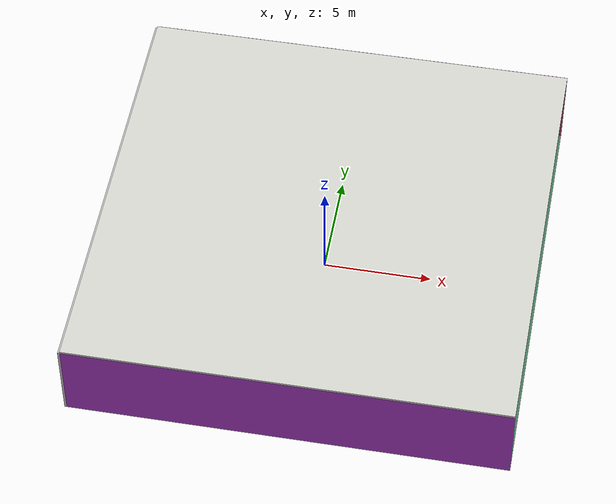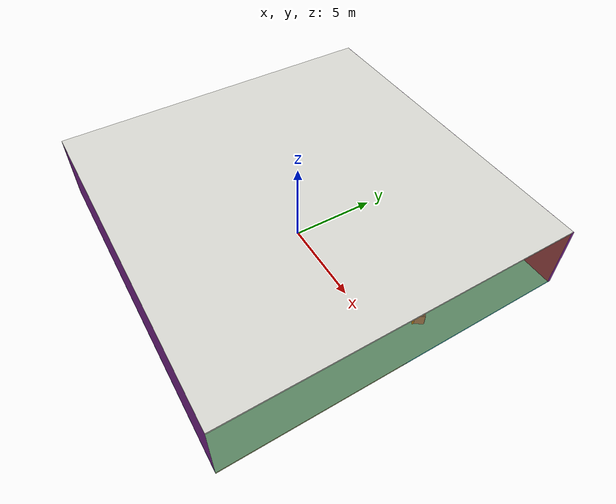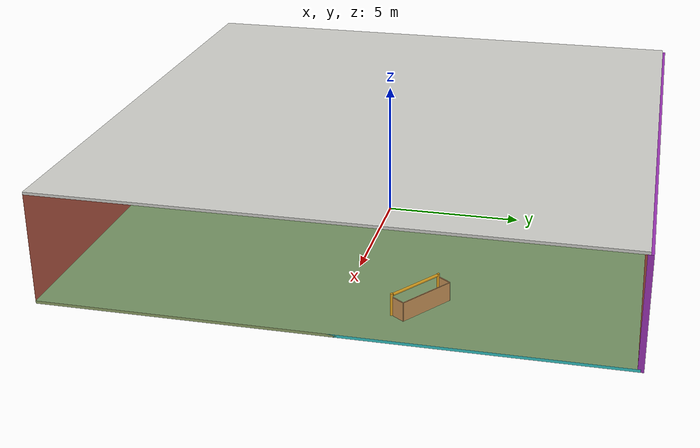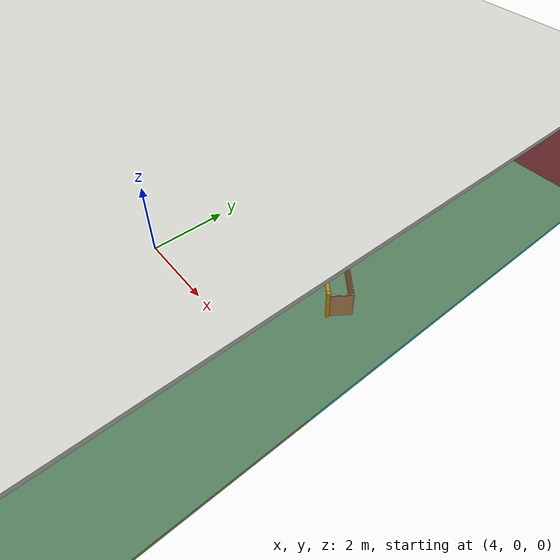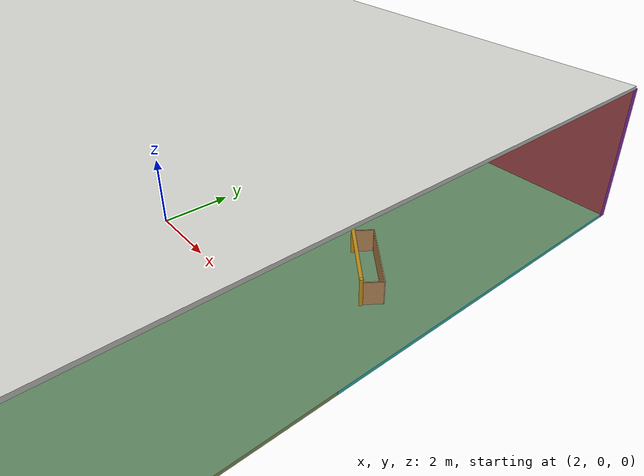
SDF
<sdf version="1.4">
 <world name="default">
  <physics type="ode">
   <max_step_size>0.001</max_step_size>
   <real_time_factor>1</real_time_factor>
   <real_time_update_rate>1000</real_time_update_rate>
   <gravity>0 0 -9.8</gravity>
  </physics>
  <scene><ambient>0.4 0.4 0.4 1</ambient><background>0.7 0.7 0.7 1</background><shadows>1</shadows></scene>
  <model name="Surrounding">
   <static>1</static>
   <link name="Ceiling">
    <collision name="Ceiling_Collision"><geometry><box><size>20 20 0.1</size></box></geometry></collision>
    <visual name="Ceiling_Visual">
     <geometry><box><size>20 20 0.1</size></box></geometry>
     <material>
      <script><uri>file://media/materials/scripts/gazebo.material</uri><name>Gazebo/CeilingTiled</name></script>
     </material>
    </visual>
    <pose>0 0 4.05 0 0 0</pose>
   </link>
   <link name="Wall_South">
    <collision name="Wall_South_Collision">
     <geometry><box><size>20 0 4</size></box></geometry>
     <pose>0 0 2 0 -0 0</pose>
    </collision>
    <visual name="Wall_South_Visual">
     <pose>0 0 2 0 -0 0</pose>
     <geometry><box><size>20 0 4</size></box></geometry>
     <material>
      <script><uri>file://media/materials/scripts/gazebo.material</uri><name>Gazebo/Purple</name></script>
     </material>
    </visual>
    <velocity_decay><linear>0</linear><angular>0</angular></velocity_decay>
    <pose>0 -10 0 0 -0 0</pose>
   </link>
   <link name="Wall_East">
    <collision name="Wall_21_Collision">
     <geometry><box><size>20 0 4</size></box></geometry>
     <pose>0 0 2 0 -0 0</pose>
    </collision>
    <visual name="Wall_21_Visual">
     <pose>0 0 2 0 -0 0</pose>
     <geometry><box><size>20 0 4</size></box></geometry>
     <material>
      <script>
       <uri>file://media/materials/scripts/gazebo.material</uri>
       <name>Gazebo/OrangeTransparent</name>
      </script>
     </material>
    </visual>
    <velocity_decay><linear>0</linear><angular>0</angular></velocity_decay>
    <pose>10 0 0 0 -0 1.5708</pose>
   </link>
   <link name="Wall_North">
    <collision name="Wall_22_Collision">
     <geometry><box><size>20 0.2 4</size></box></geometry>
     <pose>0 0 2 0 -0 0</pose>
    </collision>
    <visual name="Wall_22_Visual">
     <pose>0 0 2 0 -0 0</pose>
     <geometry><box><size>20 0.2 4</size></box></geometry>
     <material>
      <script><uri>file://media/materials/scripts/gazebo.material</uri><name>Gazebo/PurpleGlow</name></script>
     </material>
    </visual>
    <velocity_decay><linear>0</linear><angular>0</angular></velocity_decay>
    <pose>0 10 0 0 -0 0</pose>
   </link>
   <link name="Wall_West">
    <collision name="Wall_23_Collision">
     <geometry><box><size>20 0.2 4</size></box></geometry>
     <pose>0 0 2 0 -0 0</pose>
    </collision>
    <visual name="Wall_23_Visual">
     <pose>0 0 2 0 -0 0</pose>
     <geometry><box><size>20 0.2 4</size></box></geometry>
     <material>
      <script><uri>file://media/materials/scripts/gazebo.material</uri><name>Gazebo/Pioneer2Body</name></script>
     </material>
    </visual>
    <velocity_decay><linear>0</linear><angular>0</angular></velocity_decay>
    <pose>-10 0 0 0 0 -1.5708</pose>
   </link>
   <link name="Ground_link">
    <collision name="collision">
     <pose>0 0 .05 0 -0 0</pose>
     <geometry><box><size>20 20 0.1</size></box></geometry>
    </collision>
    <visual name="visual">
     <pose>0 0 .05 0 -0 0</pose>
     <geometry><box><size>20 20 0.1</size></box></geometry>
     <material>
      <script><uri>file://media/materials/scripts/gazebo.material</uri><name>Gazebo/Turquoise</name></script>
     </material>
    </visual>
   </link>
   <static>1</static>
  </model>
  <spherical_coordinates>
   <surface_model>EARTH_WGS84</surface_model>
   <latitude_deg>0</latitude_deg>
   <longitude_deg>0</longitude_deg>
   <elevation>0</elevation>
   <heading_deg>0</heading_deg>
  </spherical_coordinates>
  <light name="lightball_0" type="diffuse">
   <diffuse>0.8 0.8 0.8 1</diffuse>
   <specular>0.2 0.2 0.2 1</specular>
   <attenuation>
    <range>100</range>
    <constant>0.7</constant>
    <linear>0.01</linear>
    <quadratic>0.001</quadratic>
   </attenuation>
   <direction>-0.5 0.1 -0.9</direction>
   <pose>-6.69215634063 1.55689152877 0.540018350973 0 0 0</pose>
  </light>
  <light name="lightball_1" type="diffuse">
   <diffuse>0.8 0.8 0.8 1</diffuse>
   <specular>0.2 0.2 0.2 1</specular>
   <attenuation>
    <range>100</range>
    <constant>0.7</constant>
    <linear>0.01</linear>
    <quadratic>0.001</quadratic>
   </attenuation>
   <direction>-0.5 0.1 -0.9</direction>
   <pose>-1.88807786374 -7.42462403374 1.70743324033 0 0 0</pose>
  </light>
  <light name="lightball_2" type="diffuse">
   <diffuse>0.8 0.8 0.8 1</diffuse>
   <specular>0.2 0.2 0.2 1</specular>
   <attenuation>
    <range>100</range>
    <constant>0.7</constant>
    <linear>0.01</linear>
    <quadratic>0.001</quadratic>
   </attenuation>
   <direction>-0.5 0.1 -0.9</direction>
   <pose>-9.32927259561 8.64209307438 1.08132854799 0 0 0</pose>
  </light>
  <light name="lightball_3" type="diffuse">
   <diffuse>0.8 0.8 0.8 1</diffuse>
   <specular>0.2 0.2 0.2 1</specular>
   <attenuation>
    <range>100</range>
    <constant>0.7</constant>
    <linear>0.01</linear>
    <quadratic>0.001</quadratic>
   </attenuation>
   <direction>-0.5 0.1 -0.9</direction>
   <pose>1.25639164073 -6.78158287191 3.33462534033 0 0 0</pose>
  </light>
  <light name="lightball_4" type="diffuse">
   <diffuse>0.8 0.8 0.8 1</diffuse>
   <specular>0.2 0.2 0.2 1</specular>
   <attenuation>
    <range>100</range>
    <constant>0.7</constant>
    <linear>0.01</linear>
    <quadratic>0.001</quadratic>
   </attenuation>
   <direction>-0.5 0.1 -0.9</direction>
   <pose>9.40550109719 4.71693550695 1.18880672689 0 0 0</pose>
  </light>
  <light name="lightball_5" type="diffuse">
   <diffuse>0.8 0.8 0.8 1</diffuse>
   <specular>0.2 0.2 0.2 1</specular>
   <attenuation>
    <range>100</range>
    <constant>0.7</constant>
    <linear>0.01</linear>
    <quadratic>0.001</quadratic>
   </attenuation>
   <direction>-0.5 0.1 -0.9</direction>
   <pose>-1.59177341336 -6.07604141969 3.02540309863 0 0 0</pose>
  </light>
  <light name="lightball_6" type="diffuse">
   <diffuse>0.8 0.8 0.8 1</diffuse>
   <specular>0.2 0.2 0.2 1</specular>
   <attenuation>
    <range>100</range>
    <constant>0.7</constant>
    <linear>0.01</linear>
    <quadratic>0.001</quadratic>
   </attenuation>
   <direction>-0.5 0.1 -0.9</direction>
   <pose>-8.4280792993 4.49092436974 2.55622320327 0 0 0</pose>
  </light>
  <light name="lightball_7" type="diffuse">
   <diffuse>0.8 0.8 0.8 1</diffuse>
   <specular>0.2 0.2 0.2 1</specular>
   <attenuation>
    <range>100</range>
    <constant>0.7</constant>
    <linear>0.01</linear>
    <quadratic>0.001</quadratic>
   </attenuation>
   <direction>-0.5 0.1 -0.9</direction>
   <pose>6.66135827806 -5.69326419479 3.20391846812 0 0 0</pose>
  </light>
  <light name="lightball_8" type="diffuse">
   <diffuse>0.8 0.8 0.8 1</diffuse>
   <specular>0.2 0.2 0.2 1</specular>
   <attenuation>
    <range>100</range>
    <constant>0.7</constant>
    <linear>0.01</linear>
    <quadratic>0.001</quadratic>
   </attenuation>
   <direction>-0.5 0.1 -0.9</direction>
   <pose>-3.99344400665 5.92178304234 2.32407520853 0 0 0</pose>
  </light>
  <light name="lightball_9" type="diffuse">
   <diffuse>0.8 0.8 0.8 1</diffuse>
   <specular>0.2 0.2 0.2 1</specular>
   <attenuation>
    <range>100</range>
    <constant>0.7</constant>
    <linear>0.01</linear>
    <quadratic>0.001</quadratic>
   </attenuation>
   <direction>-0.5 0.1 -0.9</direction>
   <pose>0.0253820969571 -0.513215257269 2.20634445576 0 0 0</pose>
  </light>
  <light name="lightball_10" type="diffuse">
   <diffuse>0.8 0.8 0.8 1</diffuse>
   <specular>0.2 0.2 0.2 1</specular>
   <attenuation>
    <range>100</range>
    <constant>0.7</constant>
    <linear>0.01</linear>
    <quadratic>0.001</quadratic>
   </attenuation>
   <direction>-0.5 0.1 -0.9</direction>
   <pose>-7.2397820718 7.42554952215 1.04803852523 0 0 0</pose>
  </light>
  <include><uri>model://cabinet</uri><pose>-8.69220102194 3.95900019017 0 0 0 2.19350371459</pose></include>
  <include><uri>model://table</uri><pose>-5.33402952373 -7.01731126264 0 0 0 2.7206437511</pose></include>
  <include>
   <uri>model://textured_shapes</uri>
   <pose>-4.69560498728 -4.63068065227 0 0 0 1.88703452628</pose>
  </include>
  <include><uri>model://cabinet</uri><pose>-5.28439234879 1.75472294413 0 0 0 2.59429717491</pose></include>
  <include>
   <uri>model://textured_shapes</uri>
   <pose>-0.593824922884 -1.26636252844 0 0 0 0.278199641297</pose>
  </include>
  <include>
   <uri>model://robocup_3Dsim_goal</uri>
   <pose>7.51851153545 2.50527469097 0 0 0 0.943296505713</pose>
  </include>
 </world>
</sdf>

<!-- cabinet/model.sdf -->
<sdf version="1.5">
  <model name="cabinet">
    <static>true</static>
    <link name="cabinet_bottom_plate">
      <inertial>
        <pose>0 0 -1 0 0 0</pose>
        <inertia>
          <ixx>2.050000</ixx>
          <ixy>0</ixy>
          <ixz>0</ixz>
          <iyy>2.050000</iyy>
          <iyz>0</iyz>
          <izz>2.050000</izz>
        </inertia>
        <mass>25.000000</mass>
      </inertial>
      <collision name="cabinet_bottom_plate_geom">
        <pose>0 0 0.010000 0 0 0</pose>
        <geometry>
          <box>
            <size>0.450000 0.450000 0.020000</size>
          </box>
        </geometry>
      </collision>
      <visual name="cabinet_bottom_plate_geom_visual">
        <pose>0 0 0.010000 0 0 0</pose>
        <geometry>
          <box>
            <size>0.450000 0.450000 0.020000</size>
          </box>
        </geometry>
        <material>
          <script>
            <uri>model://media/materials/scripts/gazebo.material</uri>
            <name>Gazebo/Wood</name>
          </script>
        </material>
      </visual>
      <collision name="cabinet_bottom_plate_geom_cabinet_back_plate">
        <pose>0.235000 0 0.510000 0 0 0</pose>
        <geometry>
          <box>
            <size>0.020000 0.450000 1.020000</size>
          </box>
        </geometry>
      </collision>
      <visual name="cabinet_bottom_plate_geom_cabinet_back_plate_visual">
        <pose>0.235000 0 0.510000 0 0 0</pose>
        <geometry>
          <box>
            <size>0.020000 0.450000 1.020000</size>
          </box>
        </geometry>
        <material>
          <script>
            <uri>model://media/materials/scripts/gazebo.material</uri>
            <name>Gazebo/Wood</name>
          </script>
        </material>
      </visual>
      <collision name="cabinet_bottom_plate_geom_cabinet_left_plate">
        <pose>0 0.235000 0.510000 0 0 0</pose>
        <geometry>
          <box>
            <size>0.450000 0.020000 1.020000</size>
          </box>
        </geometry>
      </collision>
      <visual name="cabinet_bottom_plate_geom_cabinet_left_plate_visual">
        <pose>0 0.235000 0.510000 0 0 0</pose>
        <geometry>
          <box>
            <size>0.450000 0.020000 1.020000</size>
          </box>
        </geometry>
        <material>
          <script>
            <uri>model://media/materials/scripts/gazebo.material</uri>
            <name>Gazebo/Wood</name>
          </script>
        </material>
      </visual>
      <collision name="cabinet_bottom_plate_geom_cabinet_middle_plate">
        <pose>0 0 0.510000 0 0 0</pose>
        <geometry>
          <box>
            <size>0.450000 0.450000 0.020000</size>
          </box>
        </geometry>
      </collision>
      <visual name="cabinet_bottom_plate_geom_cabinet_middle_plate_visual">
        <pose>0 0 0.510000 0 0 0</pose>
        <geometry>
          <box>
            <size>0.450000 0.450000 0.020000</size>
          </box>
        </geometry>
        <material>
          <script>
            <uri>model://media/materials/scripts/gazebo.material</uri>
            <name>Gazebo/Wood</name>
          </script>
        </material>
      </visual>
      <collision name="cabinet_bottom_plate_geom_cabinet_right_plate">
        <pose>0 -0.235000 0.510000 0 0 0</pose>
        <geometry>
          <box>
            <size>0.450000 0.020000 1.020000</size>
          </box>
        </geometry>
      </collision>
      <visual name="cabinet_bottom_plate_geom_cabinet_right_plate_visual">
        <pose>0 -0.235000 0.510000 0 0 0</pose>
        <geometry>
          <box>
            <size>0.450000 0.020000 1.020000</size>
          </box>
        </geometry>
        <material>
          <script>
            <uri>model://media/materials/scripts/gazebo.material</uri>
            <name>Gazebo/Wood</name>
          </script>
        </material>
      </visual>
      <collision name="cabinet_bottom_plate_geom_cabinet_top_plate">
        <pose>0 0 1.010000 0 0 0</pose>
        <geometry>
          <box>
            <size>0.450000 0.450000 0.020000</size>
          </box>
        </geometry>
      </collision>
      <visual name="cabinet_bottom_plate_geom_cabinet_top_plate_visual">
        <pose>0 0 1.010000 0 0 0</pose>
        <geometry>
          <box>
            <size>0.450000 0.450000 0.020000</size>
          </box>
        </geometry>
        <material>
          <script>
            <uri>model://media/materials/scripts/gazebo.material</uri>
            <name>Gazebo/Wood</name>
          </script>
        </material>
      </visual>
    </link>
  </model>
</sdf>

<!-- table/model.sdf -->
<sdf version="1.5">
  <model name="table">
    <static>true</static>
    <link name="link">
      <collision name="surface">
        <pose>0 0 1.0 0 0 0</pose>
        <geometry>
          <box>
            <size>1.5 0.8 0.03</size>
          </box>
        </geometry>
        <surface>
          <friction>
            <ode>
              <mu>0.6</mu>
              <mu2>0.6</mu2>
            </ode>
          </friction>
        </surface>
      </collision>
      <visual name="visual1">
        <pose>0 0 1.0 0 0 0</pose>
        <geometry>
          <box>
            <size>1.5 0.8 0.03</size>
          </box>
        </geometry>
        <material>
          <script>
            <uri>model://media/materials/scripts/gazebo.material</uri>
            <name>Gazebo/Wood</name>
          </script>
        </material>
      </visual>
      <collision name="front_left_leg">
        <pose>0.68 0.38 0.5 0 0 0</pose>
        <geometry>
          <cylinder>
            <radius>0.02</radius>
            <length>1.0</length>
          </cylinder>
        </geometry>
      </collision>
      <visual name="front_left_leg">
        <pose>0.68 0.38 0.5 0 0 0</pose>
        <geometry>
          <cylinder>
            <radius>0.02</radius>
            <length>1.0</length>
          </cylinder>
        </geometry>
        <material>
          <script>
            <uri>model://media/materials/scripts/gazebo.material</uri>
            <name>Gazebo/Grey</name>
          </script>
        </material>
      </visual>
      <collision name="front_right_leg">
        <pose>0.68 -0.38 0.5 0 0 0</pose>
        <geometry>
          <cylinder>
            <radius>0.02</radius>
            <length>1.0</length>
          </cylinder>
        </geometry>
      </collision>
      <visual name="front_right_leg">
        <pose>0.68 -0.38 0.5 0 0 0</pose>
        <geometry>
          <cylinder>
            <radius>0.02</radius>
            <length>1.0</length>
          </cylinder>
        </geometry>
        <material>
          <script>
            <uri>model://media/materials/scripts/gazebo.material</uri>
            <name>Gazebo/Grey</name>
          </script>
        </material>
      </visual>
      <collision name="back_right_leg">
        <pose>-0.68 -0.38 0.5 0 0 0</pose>
        <geometry>
          <cylinder>
            <radius>0.02</radius>
            <length>1.0</length>
          </cylinder>
        </geometry>
      </collision>
      <visual name="back_right_leg">
        <pose>-0.68 -0.38 0.5 0 0 0</pose>
        <geometry>
          <cylinder>
            <radius>0.02</radius>
            <length>1.0</length>
          </cylinder>
        </geometry>
        <material>
          <script>
            <uri>model://media/materials/scripts/gazebo.material</uri>
            <name>Gazebo/Grey</name>
          </script>
        </material>
      </visual>
      <collision name="back_left_leg">
        <pose>-0.68 0.38 0.5 0 0 0</pose>
        <geometry>
          <cylinder>
            <radius>0.02</radius>
            <length>1.0</length>
          </cylinder>
        </geometry>
      </collision>
      <visual name="back_left_leg">
        <pose>-0.68 0.38 0.5 0 0 0</pose>
        <geometry>
          <cylinder>
            <radius>0.02</radius>
            <length>1.0</length>
          </cylinder>
        </geometry>
        <material>
          <script>
            <uri>model://media/materials/scripts/gazebo.material</uri>
            <name>Gazebo/Grey</name>
          </script>
        </material>
      </visual>
    </link>
  </model>
</sdf>

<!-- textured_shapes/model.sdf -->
<sdf version="1.6">
  <model name="textured_shapes">
    <pose>0 0 0.5 0 0 0</pose>
    <link name="box">
      <pose>0 -1.5 0 0 0 0</pose>
      <collision name="collision">
        <geometry>
          <box>
            <size>1 1 1</size>
          </box>
        </geometry>
      </collision>
      <visual name="visual">
        <geometry>
          <box>
            <size>1 1 1</size>
          </box>
        </geometry>
        <material>
          <script>
            <uri>model://../model_source/models/textured_shapes/materials/scripts</uri>
            <uri>model://../model_source/models/textured_shapes/materials/textures</uri>
            <name>TexturedShape/Squares</name>
          </script>
        </material>
      </visual>
    </link>
    <link name="sphere">
      <collision name="collision">
        <geometry>
          <sphere>
            <radius>0.5</radius>
          </sphere>
        </geometry>
      </collision>
      <visual name="visual">
        <geometry>
          <sphere>
            <radius>0.5</radius>
          </sphere>
        </geometry>
        <material>
          <script>
            <uri>model://../model_source/models/textured_shapes/materials/scripts</uri>
            <uri>model://../model_source/models/textured_shapes/materials/textures</uri>
            <name>TexturedShape/Squares</name>
          </script>
        </material>
      </visual>
    </link>
    <link name="cylinder">
      <pose>0 1.5 0 0 0 0</pose>
      <collision name="collision">
        <geometry>
          <cylinder>
            <radius>0.5</radius>
            <length>1</length>
          </cylinder>
        </geometry>
      </collision>
      <visual name="visual">
        <geometry>
          <cylinder>
            <radius>0.5</radius>
            <length>1</length>
          </cylinder>
        </geometry>
        <material>
          <script>
            <uri>model://../model_source/models/textured_shapes/materials/scripts</uri>
            <uri>model://../model_source/models/textured_shapes/materials/textures</uri>
            <name>TexturedShape/Squares</name>
          </script>
        </material>
      </visual>
    </link>
  </model>
</sdf>

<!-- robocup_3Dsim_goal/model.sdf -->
<sdf version="1.5">
  <model name="robocup_3d_goal">
    <static>true</static>
    <link name="left_post">
      <pose>0 1.05 0.45 0 0 0</pose>
      <collision name="collision">
        <geometry>
          <cylinder>
            <radius>0.05</radius>
            <length>0.9</length>
          </cylinder>
        </geometry>
      </collision>
      <visual name="visual">
        <geometry>
          <cylinder>
            <radius>0.05</radius>
            <length>0.9</length>
          </cylinder>
        </geometry>
        <material>
          <script>
            <uri>file://media/materials/scripts/gazebo.material</uri>
            <name>Gazebo/ZincYellow</name>
          </script>
        </material>
      </visual>
    </link>
    <link name="left_support_horiz_lower">
      <pose>0.30 1.05 0.01 0 0 0</pose>
      <collision name="collision">
        <geometry>
          <box>
            <size>0.50 0.02 0.02</size>
          </box>
        </geometry>
      </collision>
      <visual name="visual">
        <geometry>
          <box>
            <size>0.50 0.02 0.02</size>
          </box>
        </geometry>
        <material>
          <script>
            <uri>file://media/materials/scripts/gazebo.material</uri>
            <name>Gazebo/White</name>
          </script>
        </material>
      </visual>
    </link>
    <link name="left_support_horiz_upper">
      <pose>0.30 1.05 0.79 0 0 0</pose>
      <collision name="collision">
        <geometry>
          <box>
            <size>0.50 0.02 0.02</size>
          </box>
        </geometry>
      </collision>
      <visual name="visual">
        <geometry>
          <box>
            <size>0.50 0.02 0.02</size>
          </box>
        </geometry>
        <material>
          <script>
            <uri>file://media/materials/scripts/gazebo.material</uri>
            <name>Gazebo/White</name>
          </script>
        </material>
      </visual>
    </link>
    <link name="left_support_vertical">
      <pose>0.56 1.05 0.4 0 1.5708 0</pose>
      <collision name="collision">
        <geometry>
          <box>
            <size>0.80 0.02 0.02</size>
          </box>
        </geometry>
      </collision>
      <visual name="visual">
        <geometry>
          <box>
            <size>0.80 0.02 0.02</size>
          </box>
        </geometry>
        <material>
          <script>
            <uri>file://media/materials/scripts/gazebo.material</uri>
            <name>Gazebo/White</name>
          </script>
        </material>
      </visual>
    </link>
    <link name="right_support_horiz_lower">
      <pose>0.30 -1.05 0.01 0 0 0</pose>
      <collision name="collision">
        <geometry>
          <box>
            <size>0.50 0.02 0.02</size>
          </box>
        </geometry>
      </collision>
      <visual name="visual">
        <geometry>
          <box>
            <size>0.50 0.02 0.02</size>
          </box>
        </geometry>
        <material>
          <script>
            <uri>file://media/materials/scripts/gazebo.material</uri>
            <name>Gazebo/White</name>
          </script>
        </material>
      </visual>
    </link>
    <link name="right_support_horiz_upper">
      <pose>0.30 -1.05 0.79 0 0 0</pose>
      <collision name="collision">
        <geometry>
          <box>
            <size>0.50 0.02 0.02</size>
          </box>
        </geometry>
      </collision>
      <visual name="visual">
        <geometry>
          <box>
            <size>0.50 0.02 0.02</size>
          </box>
        </geometry>
        <material>
          <script>
            <uri>file://media/materials/scripts/gazebo.material</uri>
            <name>Gazebo/White</name>
          </script>
        </material>
      </visual>
    </link>
    <link name="right_support_vertical">
      <pose>0.56 -1.05 0.4 0 1.5708 0</pose>
      <collision name="collision">
        <geometry>
          <box>
            <size>0.80 0.02 0.02</size>
          </box>
        </geometry>
      </collision>
      <visual name="visual">
        <geometry>
          <box>
            <size>0.80 0.02 0.02</size>
          </box>
        </geometry>
        <material>
          <script>
            <uri>file://media/materials/scripts/gazebo.material</uri>
            <name>Gazebo/White</name>
          </script>
        </material>
      </visual>
    </link>
    <link name="center_support_horiz_lower">
      <pose>0.56 0 0.01 0 1.5708 0</pose>
      <collision name="collision">
        <geometry>
          <box>
            <size>0.02 2.08 0.02</size>
          </box>
        </geometry>
      </collision>
      <visual name="visual">
        <geometry>
          <box>
            <size>0.02 2.08 0.02</size>
          </box>
        </geometry>
        <material>
          <script>
            <uri>file://media/materials/scripts/gazebo.material</uri>
            <name>Gazebo/White</name>
          </script>
        </material>
      </visual>
    </link>
    <link name="center_support_horiz_upper">
      <pose>0.56 0 0.79 0 1.5708 0</pose>
      <collision name="collision">
        <geometry>
          <box>
            <size>0.02 2.08 0.02</size>
          </box>
        </geometry>
      </collision>
      <visual name="visual">
        <geometry>
          <box>
            <size>0.02 2.08 0.02</size>
          </box>
        </geometry>
        <material>
          <script>
            <uri>file://media/materials/scripts/gazebo.material</uri>
            <name>Gazebo/White</name>
          </script>
        </material>
      </visual>
    </link>
    <link name="right_post">
      <pose>0 -1.05 0.45 0 0 0</pose>
      <collision name="collision">
        <geometry>
          <cylinder>
            <radius>0.05</radius>
            <length>0.9</length>
          </cylinder>
        </geometry>
      </collision>
      <visual name="visual">
        <geometry>
          <cylinder>
            <radius>0.05</radius>
            <length>0.9</length>
          </cylinder>
        </geometry>
        <material>
          <script>
            <uri>file://media/materials/scripts/gazebo.material</uri>
            <name>Gazebo/ZincYellow</name>
          </script>
        </material>
      </visual>
    </link>
    <link name="crossbar">
      <pose>0 0 0.85 1.57 1.57 0</pose>
      <collision name="collision">
        <geometry>
          <cylinder>
            <radius>0.05</radius>
            <length>2.0</length>
          </cylinder>
        </geometry>
      </collision>
      <visual name="visual">
        <geometry>
          <cylinder>
            <radius>0.05</radius>
            <length>2.0</length>
          </cylinder>
        </geometry>
        <material>
          <script>
            <uri>file://media/materials/scripts/gazebo.material</uri>
            <name>Gazebo/ZincYellow</name>
          </script>
        </material>
      </visual>
    </link>
    <link name="center_net">
      <pose>0.56 0 0.40 0 0 0</pose>
      <collision name="collision">
        <geometry>
          <box>
            <size>0.01 2.1 0.80</size>
          </box>
        </geometry>
      </collision>
      <visual name="visual">
        <geometry>
          <box>
            <size>0.01 2.1 0.80</size>
          </box>
        </geometry>
        <material>
          <script>
            <uri>model://../model_source/models/robocup09_spl_field/materials/scripts/</uri>
            <uri>model://../model_source/models/robocup09_spl_field/materials/textures/</uri>
            <name>RoboCup/Net</name>
          </script>
        </material>
      </visual>
    </link>
    <link name="left_net">
      <pose>0.30 1.05 0.40 0 0 0</pose>
      <collision name="collision">
        <geometry>
          <box>
            <size>0.50 0.01 0.76</size>
          </box>
        </geometry>
      </collision>
      <visual name="visual">
        <geometry>
          <box>
            <size>0.50 0.01 0.76</size>
          </box>
        </geometry>
        <material>
          <script>
            <uri>model://../model_source/models/robocup09_spl_field/materials/scripts/</uri>
            <uri>model://../model_source/models/robocup09_spl_field/materials/textures/</uri>
            <name>RoboCup/Net</name>
          </script>
        </material>
      </visual>
    </link>
    <link name="right_net">
      <pose>0.30 -1.05 0.40 0 0 0</pose>
      <collision name="collision">
        <geometry>
          <box>
            <size>0.50 0.01 0.76</size>
          </box>
        </geometry>
      </collision>
      <visual name="visual">
        <geometry>
          <box>
            <size>0.50 0.01 0.76</size>
          </box>
        </geometry>
        <material>
          <script>
            <uri>model://../model_source/models/robocup09_spl_field/materials/scripts/</uri>
            <uri>model://../model_source/models/robocup09_spl_field/materials/textures/</uri>
            <name>RoboCup/Net</name>
          </script>
        </material>
      </visual>
    </link>
  </model>
</sdf>
